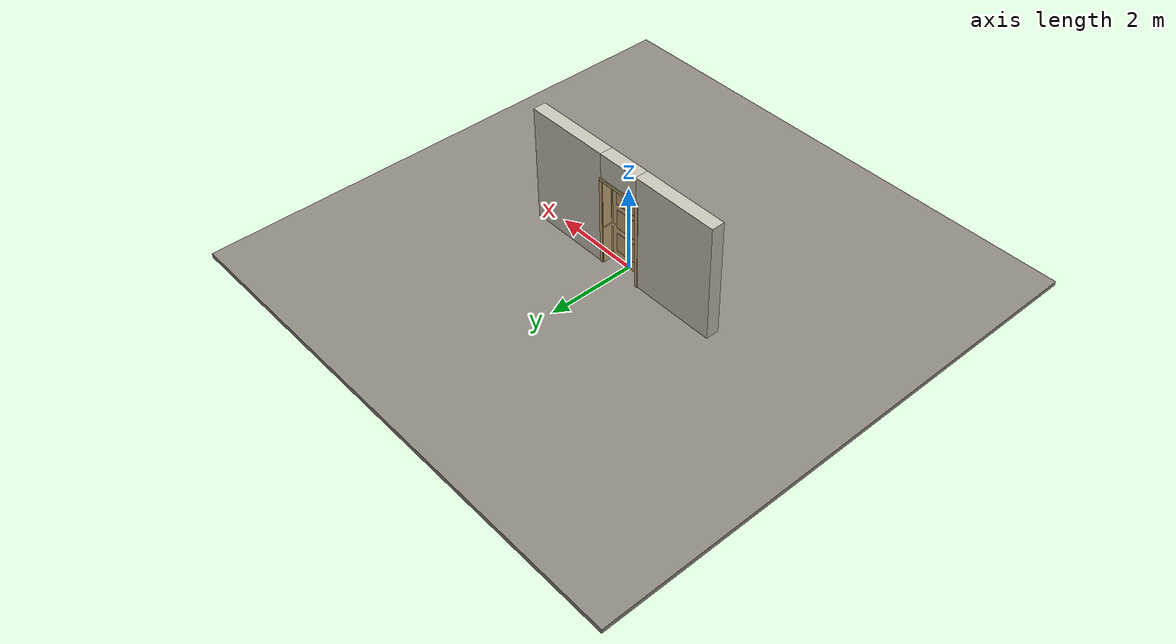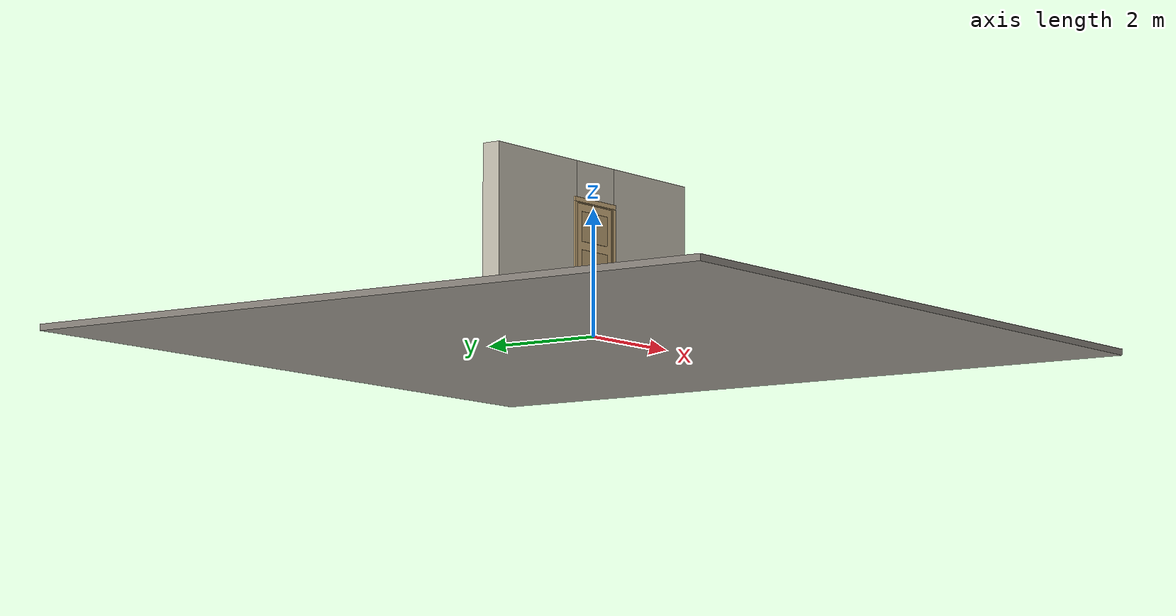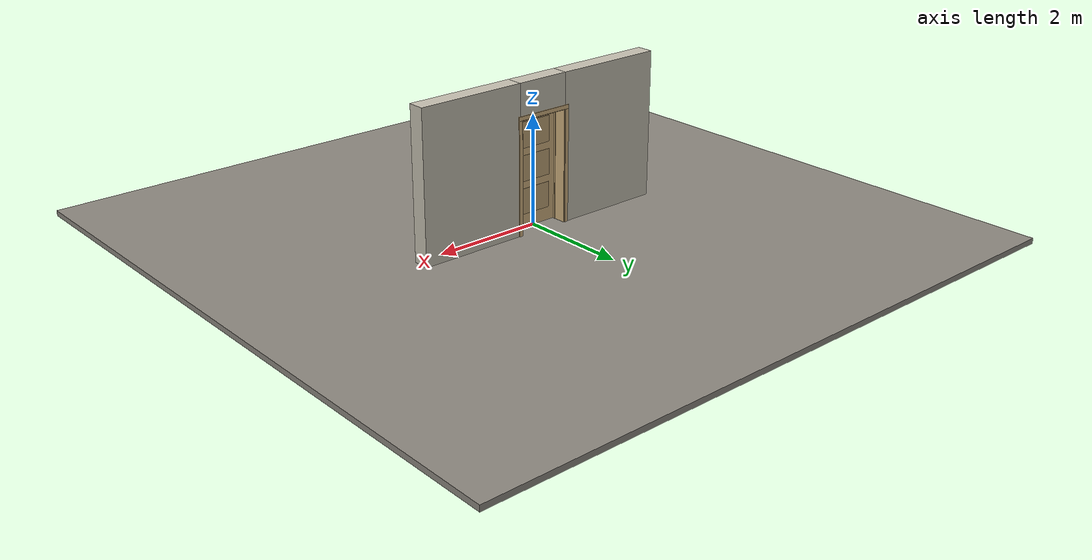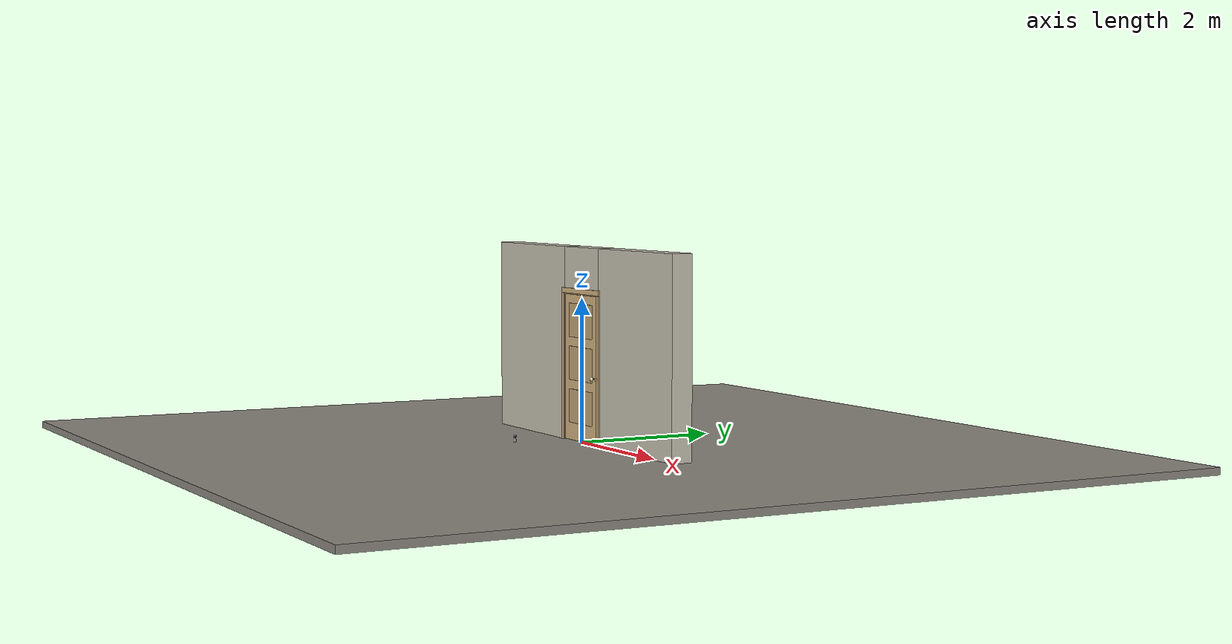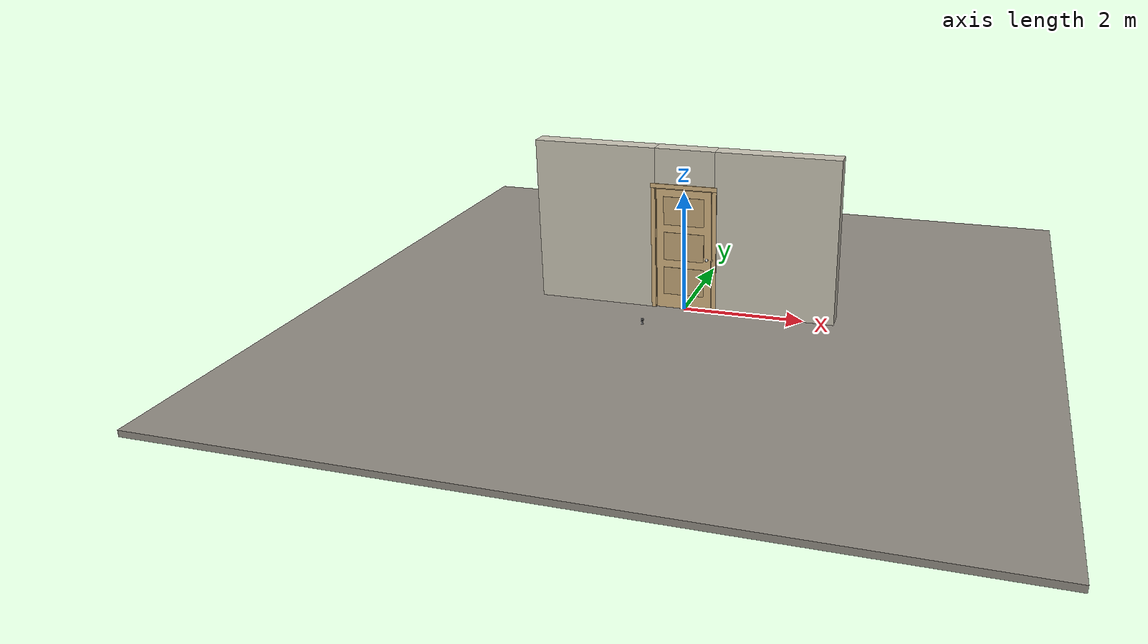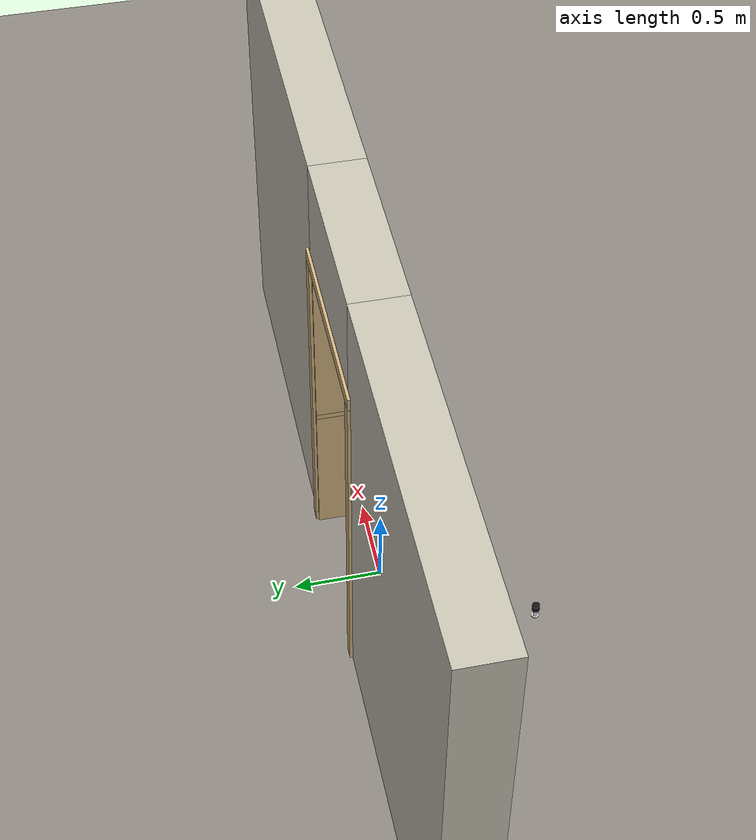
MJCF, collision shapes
<?xml version="1.0" ?>
<mujoco model="db0364_swing_single_full">
  <compiler angle="radian" meshdir="../../hardware" texturedir="../../textures" autolimits="true" inertiafromgeom="false"/>
  <option timestep="0.002" integrator="implicitfast" cone="elliptic" impratio="10" noslip_iterations="3">
    <flag multiccd="enable"/>
  </option>
  <size memory="16M"/>
  <default>
    <geom condim="4" solref="0.005 1" solimp="0.95 0.99 0.001"/>
    <joint solreflimit="0.005 1" solimplimit="0.95 0.99 0.001"/>
    <tendon solreflimit="0.005 1"/>
    <equality solref="0.002 1"/>
  </default>
  <visual>
    <headlight ambient="0.4 0.4 0.4" diffuse="0.7 0.7 0.7" specular="0.2 0.2 0.2"/>
    <quality shadowsize="4096"/>
    <map znear="0.01" zfar="60"/>
  </visual>
  <asset>
    <mesh name="hinge_b1c89c1db8" file="hinge_b1c89c1db8.obj"/>
    <mesh name="hinge_jamb_1d7c7d2bbd" file="hinge_jamb_1d7c7d2bbd.obj"/>
    <mesh name="knob_d6523d5571" file="knob_d6523d5571.obj"/>
    <material name="mat_floor" rgba="0.55 0.53 0.5 1" specular="0.2" shininess="0.15" reflectance="0"/>
    <material name="mat_wall" rgba="0.78 0.76 0.7 1" specular="0.2" shininess="0.1" reflectance="0"/>
    <material name="mat_leaf" rgba="0.82 0.7 0.5 1" specular="0.2" shininess="0.45" reflectance="0"/>
    <material name="mat_leaf_panel" rgba="0.754 0.644 0.46 1" specular="0.2" shininess="0.45" reflectance="0"/>
    <material name="mat_hinge" rgba="0.65 0.66 0.68 1" specular="0.74" shininess="0.5" reflectance="0.36"/>
    <material name="mat_op_pvc" rgba="0.92 0.92 0.9 1" specular="0.2" shininess="0.6" reflectance="0"/>
    <material name="mat_trim" rgba="0.85 0.66 0.3 1" specular="0.8" shininess="0.75" reflectance="0.4"/>
    <material name="mat_bolt" rgba="0.85 0.66 0.3 1" specular="0.8" shininess="0.75" reflectance="0.4"/>
    <material name="mat_frame" rgba="0.82 0.7 0.5 1" specular="0.2" shininess="0.45" reflectance="0"/>
    <material name="mat_bumper_stop" rgba="0.08 0.08 0.08 1" specular="0.2" shininess="0.1" reflectance="0"/>
    <material name="mat_stop_base" rgba="0.9 0.9 0.92 1" specular="0.8" shininess="0.9" reflectance="0.4"/>
    <texture name="skybox" type="skybox" builtin="gradient" rgb1="0.6 0.7 0.85" rgb2="0.9 0.92 0.95" width="256" height="256"/>
  </asset>
  <worldbody>
    <light name="sun" pos="1.5 -2.5 4" dir="-0.3 0.5 -0.8" directional="true" diffuse="0.8 0.8 0.8" specular="0.3 0.3 0.3" castshadow="true"/>
    <light name="fill" pos="-1.5 2.5 3" dir="0.3 -0.5 -0.7" directional="true" diffuse="0.35 0.35 0.4" castshadow="false"/>
    <camera name="robot_view" pos="0 -2.419187 1.734312" xyaxes="1 0 0 0 0.26963 0.962964" fovy="52"/>
    <camera name="far_view" pos="0 2.665188 1.734312" xyaxes="-1 0 0 0 -0.26963 0.962964" fovy="52"/>
    <camera name="iso" pos="1.932062 -2.012437 2.141063" xyaxes="0.741536 0.670913 0 -0.242917 0.268487 0.932151" fovy="46"/>
    <camera name="detail_handle" pos="0.5765 -0.8665 1.194" xyaxes="0.97561 0.219512 0 -0.070934 0.315262 0.94635" fovy="38"/>
    <geom name="floor" type="box" size="6 6 0.05" pos="0 0 -0.05" material="mat_floor" group="0" contype="1" conaffinity="1" friction="0.8 0.005 0.0001" density="2400"/>
    <geom name="wall_left" type="box" size="1.01025 0.15 1.35" pos="-1.48975 0.123 1.35" material="mat_wall" group="0" contype="1" conaffinity="1" friction="0.6 0.005 0.0001" density="800"/>
    <geom name="wall_right" type="box" size="0.99525 0.15 1.35" pos="1.50475 0.123 1.35" material="mat_wall" group="0" contype="1" conaffinity="1" friction="0.6 0.005 0.0001" density="800"/>
    <geom name="wall_header" type="box" size="0.4945 0.15 0.303" pos="0.015 0.123 2.397" material="mat_wall" group="0" contype="1" conaffinity="1" friction="0.6 0.005 0.0001" density="800"/>
    <geom name="hinge_0_jamb" type="mesh" mesh="hinge_jamb_1d7c7d2bbd" pos="-0.4575 -0.027 0.259" material="mat_hinge" group="1" contype="0" conaffinity="0" density="7850"/>
    <geom name="hinge_1_jamb" type="mesh" mesh="hinge_jamb_1d7c7d2bbd" pos="-0.4575 -0.027 1.025" material="mat_hinge" group="1" contype="0" conaffinity="0" density="7850"/>
    <geom name="hinge_2_jamb" type="mesh" mesh="hinge_jamb_1d7c7d2bbd" pos="-0.4575 -0.027 1.861" material="mat_hinge" group="1" contype="0" conaffinity="0" density="7850"/>
    <geom name="jamb_hinge" type="box" size="0.0095 0.15 1.0225" pos="-0.47 0.123 1.0225" material="mat_frame" group="0" contype="1" conaffinity="1" friction="0.6 0.005 0.0001" density="400"/>
    <geom name="strike_914_wall_n" type="box" size="0.0245 0.132575 0.0167" pos="0.485 0.140425 0.914" material="mat_frame" group="0" contype="1" conaffinity="1" friction="0.6 0.005 0.0001" density="400"/>
    <geom name="strike_914_wall_p" type="box" size="0.0245 0.008 0.0167" pos="0.485 -0.01585 0.914" material="mat_frame" group="0" contype="1" conaffinity="1" friction="0.6 0.005 0.0001" density="400"/>
    <geom name="strike_914_ramp" type="box" size="0.0245 0.01649 0.0167" pos="0.489636 -0.028673 0.914" quat="0.977148 0 0 0.212558" material="mat_frame" group="0" contype="1" conaffinity="1" friction="0.12 0.005 0.0001" density="400"/>
    <geom name="strike_914_back" type="box" size="0.01615 0.00785 0.0167" pos="0.49335 0 0.914" material="mat_frame" group="0" contype="1" conaffinity="1" friction="0.6 0.005 0.0001" density="400"/>
    <geom name="jamb_strike_0" type="box" size="0.0245 0.15 0.44865" pos="0.485 0.123 0.44865" material="mat_frame" group="0" contype="1" conaffinity="1" friction="0.6 0.005 0.0001" density="400"/>
    <geom name="jamb_strike_1" type="box" size="0.0245 0.15 0.55715" pos="0.485 0.123 1.48785" material="mat_frame" group="0" contype="1" conaffinity="1" friction="0.6 0.005 0.0001" density="400"/>
    <geom name="jamb_head" type="box" size="0.4945 0.15 0.0095" pos="0.015 0.123 2.0545" material="mat_frame" group="0" contype="1" conaffinity="1" friction="0.6 0.005 0.0001" density="400"/>
    <geom name="head_stud" type="box" size="0.4945 0.15 0.015" pos="0.015 0.123 2.079" material="mat_wall" group="0" contype="1" conaffinity="1" friction="0.6 0.005 0.0001" density="500"/>
    <geom name="stop_hinge" type="box" size="0.0055 0.016 1.0225" pos="-0.455 0.0365 1.0225" material="mat_frame" group="0" contype="1" conaffinity="1" friction="0.6 0.005 0.0001" density="400"/>
    <geom name="stop_strike" type="box" size="0.0055 0.016 1.0225" pos="0.455 0.0365 1.0225" material="mat_frame" group="0" contype="1" conaffinity="1" friction="0.6 0.005 0.0001" density="400"/>
    <geom name="stop_head" type="box" size="0.4605 0.016 0.0055" pos="0 0.0365 2.0395" material="mat_frame" group="0" contype="1" conaffinity="1" friction="0.6 0.005 0.0001" density="400"/>
    <geom name="casing_l_n" type="box" size="0.035 0.008 1.032" pos="-0.5095 -0.035 1.0225" material="mat_frame" group="2" contype="0" conaffinity="0" density="400"/>
    <geom name="casing_r_n" type="box" size="0.035 0.008 1.032" pos="0.5095 -0.035 1.0225" material="mat_frame" group="2" contype="0" conaffinity="0" density="400"/>
    <geom name="casing_h_n" type="box" size="0.5445 0.008 0.035" pos="0 -0.035 2.094" material="mat_frame" group="2" contype="0" conaffinity="0" density="400"/>
    <geom name="casing_l_p" type="box" size="0.035 0.008 1.032" pos="-0.5095 0.281 1.0225" material="mat_frame" group="2" contype="0" conaffinity="0" density="400"/>
    <geom name="casing_r_p" type="box" size="0.035 0.008 1.032" pos="0.5095 0.281 1.0225" material="mat_frame" group="2" contype="0" conaffinity="0" density="400"/>
    <geom name="casing_h_p" type="box" size="0.5445 0.008 0.035" pos="0 0.281 2.094" material="mat_frame" group="2" contype="0" conaffinity="0" density="400"/>
    <geom name="door_stop_base" type="cylinder" size="0.022 0.003" pos="-0.4735 -0.8039 0.003" material="mat_stop_base" group="0" contype="1" conaffinity="1" friction="0.6 0.005 0.0001" density="7850"/>
    <geom name="door_stop_post" type="cylinder" size="0.012 0.0245" pos="-0.4735 -0.8039 0.0305" material="mat_stop_base" group="0" contype="1" conaffinity="1" friction="0.6 0.005 0.0001" density="7850"/>
    <geom name="door_stop_bumper" type="cylinder" size="0.022 0.02" pos="-0.4735 -0.8039 0.075" material="mat_bumper_stop" group="0" contype="1" conaffinity="1" friction="0.6 0.005 0.0001" density="1100"/>
    <site name="approach_point" pos="0 -1.5 0" quat="1 0 0 0" size="0.05" rgba="0.2 0.9 0.2 0.5" group="4"/>
    <site name="goal_point" pos="0 1.5 0" quat="1 0 0 0" size="0.05" rgba="0.2 0.9 0.2 0.5" group="4"/>
    <site name="door_plane_center" pos="0 0 1.0225" quat="1 0 0 0" size="0.02" rgba="0.2 0.9 0.2 0.5" group="4"/>
    <body name="leaf" pos="-0.4605 0 0">
      <inertial pos="0.449785 -0.000396 1.025505" mass="29.715968" quat="-0.499636 0.50084 -0.499146 -0.500376" diaginertia="2.165838156 10.281579332 12.439026405"/>
      <joint name="leaf_hinge" type="hinge" axis="0 0 -1" pos="0.003 -0.027 0" limited="true" range="0 1.570796" damping="0.30611" frictionloss="1.007188" armature="0.02"/>
      <geom name="leaf_slab" type="box" size="0.457 0.02 1.016" pos="0.46 0 1.025" material="mat_leaf" group="0" contype="1" conaffinity="1" friction="0.35 0.005 0.0001" density="1"/>
      <geom name="leaf_panel_0_n" type="box" size="0.33646 0.003 0.23448" pos="0.46 -0.023 0.487" material="mat_leaf_panel" group="1" contype="0" conaffinity="0" density="1"/>
      <geom name="leaf_panel_0_p" type="box" size="0.33646 0.003 0.23448" pos="0.46 0.023 0.487" material="mat_leaf_panel" group="1" contype="0" conaffinity="0" density="1"/>
      <geom name="leaf_panel_1_n" type="box" size="0.33646 0.003 0.23448" pos="0.46 -0.023 1.08596" material="mat_leaf_panel" group="1" contype="0" conaffinity="0" density="1"/>
      <geom name="leaf_panel_1_p" type="box" size="0.33646 0.003 0.23448" pos="0.46 0.023 1.08596" material="mat_leaf_panel" group="1" contype="0" conaffinity="0" density="1"/>
      <geom name="leaf_panel_2_n" type="box" size="0.33646 0.003 0.23448" pos="0.46 -0.023 1.68492" material="mat_leaf_panel" group="1" contype="0" conaffinity="0" density="1"/>
      <geom name="leaf_panel_2_p" type="box" size="0.33646 0.003 0.23448" pos="0.46 0.023 1.68492" material="mat_leaf_panel" group="1" contype="0" conaffinity="0" density="1"/>
      <geom name="hinge_0" type="mesh" mesh="hinge_b1c89c1db8" pos="0.003 -0.027 0.259" material="mat_hinge" group="1" contype="0" conaffinity="0" density="7850"/>
      <geom name="hinge_1" type="mesh" mesh="hinge_b1c89c1db8" pos="0.003 -0.027 1.025" material="mat_hinge" group="1" contype="0" conaffinity="0" density="7850"/>
      <geom name="hinge_2" type="mesh" mesh="hinge_b1c89c1db8" pos="0.003 -0.027 1.861" material="mat_hinge" group="1" contype="0" conaffinity="0" density="7850"/>
      <geom name="leaf_latch_bolt_faceplate" type="box" size="0.0006 0.01235 0.0267" pos="0.9164 0 0.914" material="mat_bolt" group="1" contype="0" conaffinity="0" density="8500"/>
      <site name="leaf_edge_mid" pos="0.917 0 1.016" quat="1 0 0 0" size="0.02" rgba="0.2 0.9 0.2 0.5" group="4"/>
      <body name="leaf_handle" pos="0.857 0 0.914">
        <inertial pos="0 0 0" mass="3.579588" quat="0.5 0.5 0.5 0.5" diaginertia="0.003579706 0.013839768 0.013839768"/>
        <joint name="leaf_handle_hinge" type="hinge" axis="0 -1 0" limited="true" range="0 0.87" damping="0.164801" frictionloss="0.039" stiffness="0.5" springref="-0.5" armature="0.01"/>
        <geom name="leaf_handle_spindle" type="cylinder" size="0.006 0.028" pos="0 0 0" quat="0.707107 -0.707107 0 0" material="mat_op_pvc" group="1" contype="0" conaffinity="0" density="7850"/>
        <geom name="leaf_handle_knob_n" type="mesh" mesh="knob_d6523d5571" pos="0 -0.02 0" quat="0.707107 0.707107 0 0" material="mat_op_pvc" group="1" contype="0" conaffinity="0" density="3000"/>
        <geom name="leaf_handle_knob_col_n" type="sphere" size="0.0243" pos="0 -0.0665 0" material="mat_op_pvc" group="0" contype="1" conaffinity="1" friction="0.15 0.01 0.0001" density="3000"/>
        <geom name="leaf_handle_knob_neck_n" type="cylinder" size="0.011 0.012" pos="0 -0.032 0" quat="0.707107 -0.707107 0 0" material="mat_op_pvc" group="3" contype="1" conaffinity="1" rgba="0.8 0.3 0.3 0.25" friction="0.6 0.005 0.0001" density="3000"/>
        <geom name="leaf_handle_knob_p" type="mesh" mesh="knob_d6523d5571" pos="0 0.02 0" quat="-0.707107 0.707107 0 0" material="mat_op_pvc" group="1" contype="0" conaffinity="0" density="3000"/>
        <geom name="leaf_handle_knob_col_p" type="sphere" size="0.0243" pos="0 0.0665 0" material="mat_op_pvc" group="0" contype="1" conaffinity="1" friction="0.15 0.01 0.0001" density="3000"/>
        <geom name="leaf_handle_knob_neck_p" type="cylinder" size="0.011 0.012" pos="0 0.032 0" quat="0.707107 -0.707107 0 0" material="mat_op_pvc" group="3" contype="1" conaffinity="1" rgba="0.8 0.3 0.3 0.25" friction="0.6 0.005 0.0001" density="3000"/>
        <site name="leaf_handle_grip_n" pos="0 -0.0665 0" quat="1 0 0 0" size="0.012" rgba="0.2 0.9 0.2 0.5" group="4"/>
        <site name="leaf_handle_grip_p" pos="0 0.0665 0" quat="1 0 0 0" size="0.012" rgba="0.2 0.9 0.2 0.5" group="4"/>
      </body>
      <body name="leaf_latch_bolt" pos="0.917 0 0.914">
        <inertial pos="-0.00865 0 0" mass="0.041419" quat="0.92388 -0.382683 0 0" diaginertia="0.000000798 0.000005598 0.000005598"/>
        <joint name="leaf_latch_bolt_slide" type="slide" axis="-1 0 0" limited="true" range="0 0.0127" damping="2" frictionloss="0.3" stiffness="300" springref="-0.008333" armature="0.1"/>
        <geom name="leaf_latch_bolt_capsule" type="capsule" size="0.00635 0.015" pos="-0.00865 0 0" quat="0.707107 0 0.707107 0" material="mat_bolt" group="0" contype="1" conaffinity="1" friction="0.2 0.005 0.0001" density="8500"/>
      </body>
    </body>
  </worldbody>
  <tendon>
    <fixed name="leaf_latch_bolt_coupling" limited="true" range="0 10">
      <joint joint="leaf_latch_bolt_slide" coef="1"/>
      <joint joint="leaf_handle_hinge" coef="-0.015679"/>
    </fixed>
  </tendon>
  <sensor>
    <jointpos name="leaf_hinge_pos" joint="leaf_hinge"/>
    <jointvel name="leaf_hinge_vel" joint="leaf_hinge"/>
    <jointpos name="leaf_handle_hinge_pos" joint="leaf_handle_hinge"/>
    <jointvel name="leaf_handle_hinge_vel" joint="leaf_handle_hinge"/>
    <jointpos name="leaf_latch_bolt_slide_pos" joint="leaf_latch_bolt_slide"/>
    <jointvel name="leaf_latch_bolt_slide_vel" joint="leaf_latch_bolt_slide"/>
  </sensor>
</mujoco>
